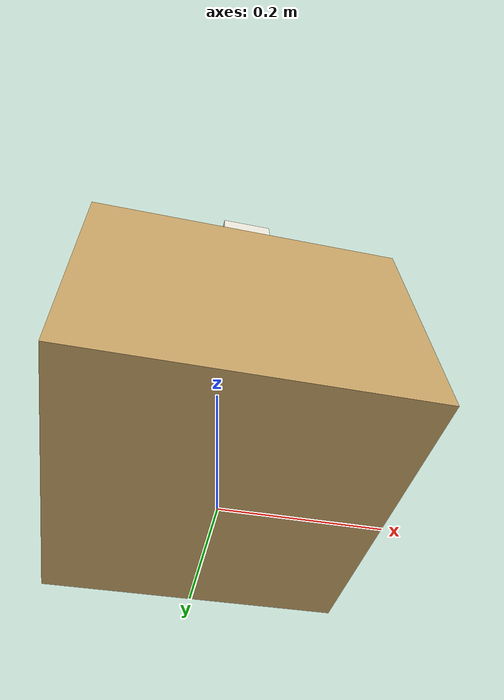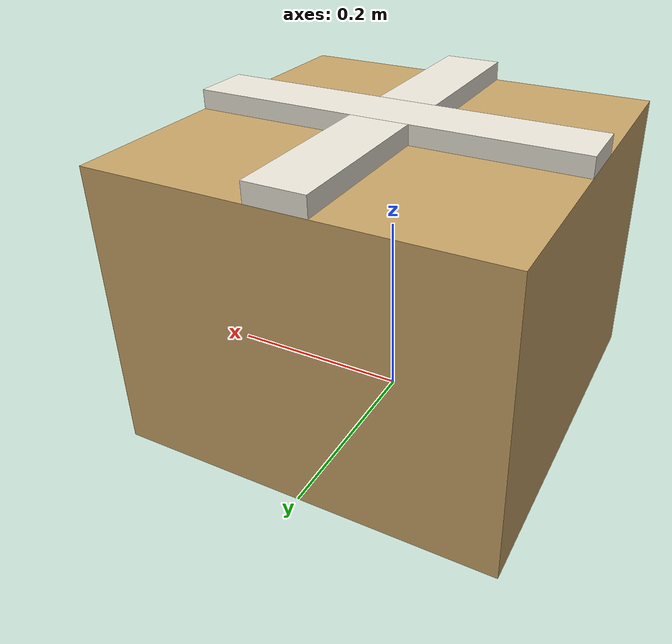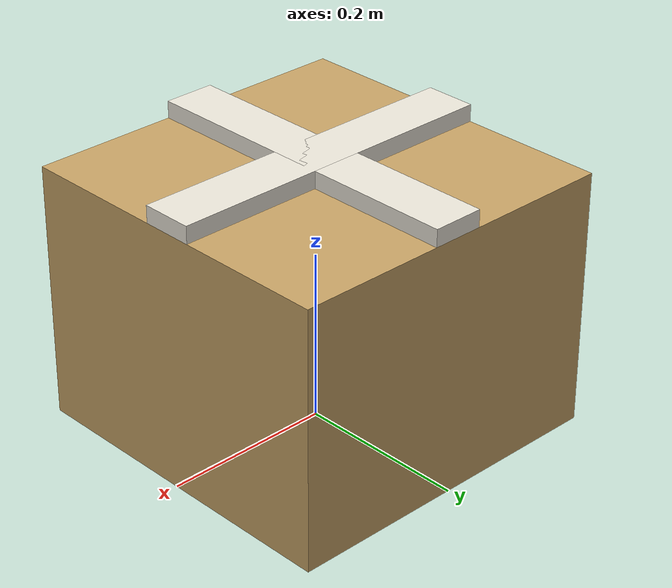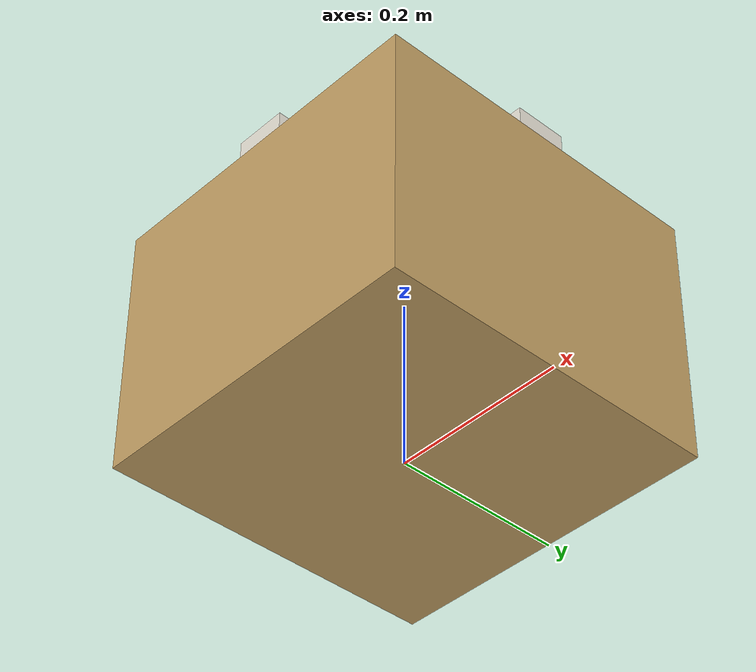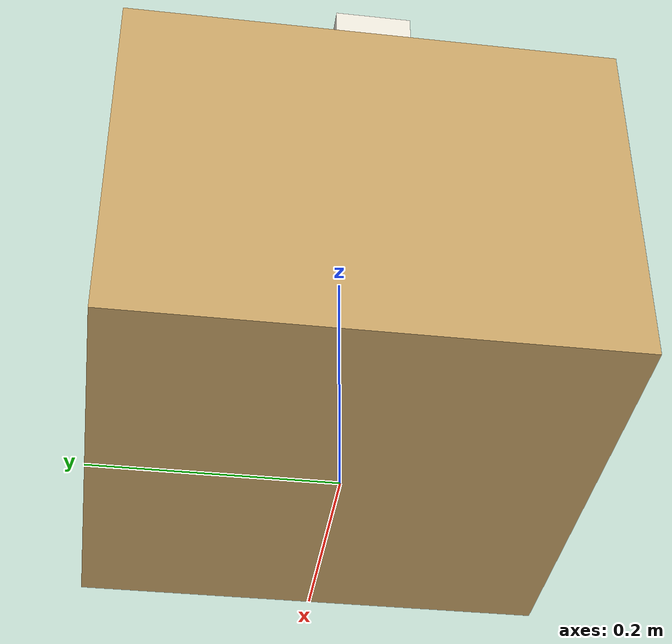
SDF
<?xml version="1.0" ?>
<sdf version="1.6">
<model name="package">
  <static>true</static>
  <link name="link">
    <collision name="footprint">
      <pose>0 0 0.15 0 0 0</pose>
      <geometry><box><size>0.4 0.4 0.3</size></box></geometry>
    </collision>
<visual name="body">
<pose>0 0 0.15 0 0 0</pose>
<geometry><box><size>0.4 0.4 0.3</size></box></geometry>
<material><ambient>0.62 0.5 0.3 1</ambient>
<diffuse>0.78 0.64 0.4 1</diffuse>
<specular>0.15 0.12 0.06 1</specular></material>
</visual>
<visual name="tape_x">
<pose>0 0 0.31 0 0 0</pose>
<geometry><box><size>0.4 0.06 0.02</size></box></geometry>
<material><ambient>0.85 0.83 0.78 1</ambient>
<diffuse>0.92 0.9 0.85 1</diffuse>
<specular>0.2 0.2 0.2 1</specular></material>
</visual>
<visual name="tape_y">
<pose>0 0 0.31 0 0 0</pose>
<geometry><box><size>0.06 0.4 0.02</size></box></geometry>
<material><ambient>0.85 0.83 0.78 1</ambient>
<diffuse>0.92 0.9 0.85 1</diffuse>
<specular>0.2 0.2 0.2 1</specular></material>
</visual>
  </link>
</model>
</sdf>
